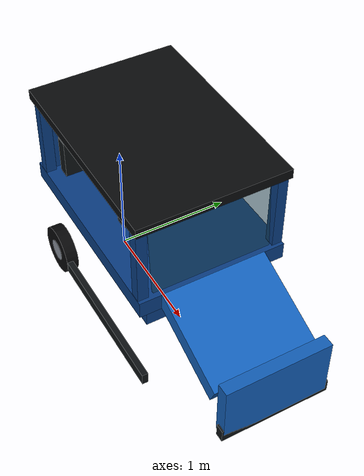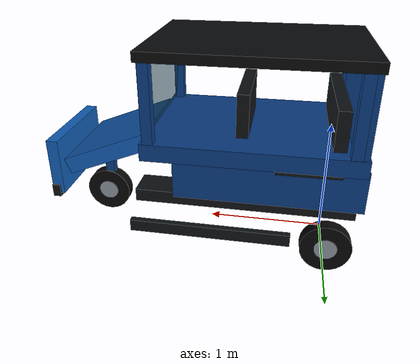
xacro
<?xml version="1.0"?>
<robot xmlns:xacro="http://ros.org/wiki/xacro" name="etrike">
  <xacro:property name="wheel_base" value="2.000"/>
  <xacro:property name="rear_track" value="1.150"/>
  <xacro:property name="half_rear_track" value="0.575"/>
  <xacro:property name="wheel_radius" value="0.203"/>
  <xacro:property name="wheel_width" value="0.102"/>
  <xacro:property name="max_steer_angle" value="0.747"/>

  <xacro:property name="overall_length" value="2.635"/>
  <xacro:property name="overall_width" value="1.300"/>
  <xacro:property name="overall_height" value="1.700"/>
  <xacro:property name="ground_clearance" value="0.170"/>

  <!-- Estimated split; replace after measuring the physical vehicle. -->
  <xacro:property name="front_overhang" value="0.350"/>
  <xacro:property name="rear_overhang" value="0.285"/>

  <xacro:property name="rear_body_length" value="1.550"/>
  <xacro:property name="rear_body_center_x" value="${-rear_overhang + rear_body_length / 2.0}"/>

  <material name="body_blue"><color rgba="0.035 0.235 0.510 1.0"/></material>
  <material name="body_blue_light"><color rgba="0.070 0.370 0.720 1.0"/></material>
  <material name="tire_black"><color rgba="0.025 0.025 0.030 1.0"/></material>
  <material name="hub_metal"><color rgba="0.55 0.58 0.62 1.0"/></material>
  <material name="trim_dark"><color rgba="0.055 0.070 0.080 1.0"/></material>
  <material name="canopy_black"><color rgba="0.035 0.040 0.045 1.0"/></material>
  <material name="window_glass"><color rgba="0.10 0.27 0.34 0.55"/></material>
  <material name="headlamp"><color rgba="1.0 0.82 0.25 1.0"/></material>
  <material name="tail_lamp"><color rgba="0.80 0.025 0.015 1.0"/></material>

  <link name="base_footprint"/>

  <link name="base_link">
    <!-- Narrow central spine keeps all three motorcycle-style wheels exposed. -->
    <visual name="chassis">
      <origin xyz="0.708 0 0.230" rpy="0 0 0"/>
      <geometry><box size="1.985 0.280 0.120"/></geometry>
      <material name="trim_dark"/>
    </visual>

    <!-- Passenger body and front cowling. -->
    <visual name="rear_body">
      <origin xyz="${rear_body_center_x} 0 0.620" rpy="0 0 0"/>
      <geometry><box size="${rear_body_length} 0.880 0.360"/></geometry>
      <material name="body_blue"/>
    </visual>
    <visual name="sloped_front_scudo">
      <origin xyz="1.820 0 0.780" rpy="0 0.380 0"/>
      <geometry><box size="0.780 0.850 0.140"/></geometry>
      <material name="body_blue_light"/>
    </visual>
    <visual name="front_apron">
      <origin xyz="2.300 0 0.610" rpy="0 0 0"/>
      <geometry><box size="0.100 0.850 0.500"/></geometry>
      <material name="body_blue_light"/>
    </visual>
    <visual name="cabin_belt">
      <origin xyz="0.620 0 0.910" rpy="0 0 0"/>
      <geometry><box size="1.720 1.200 0.140"/></geometry>
      <material name="body_blue"/>
    </visual>
    <visual name="left_side_step">
      <origin xyz="0.930 0.625 0.260" rpy="0 0 0"/>
      <geometry><box size="1.300 0.050 0.100"/></geometry>
      <material name="trim_dark"/>
    </visual>
    <visual name="right_side_step">
      <origin xyz="0.930 -0.625 0.260" rpy="0 0 0"/>
      <geometry><box size="1.300 0.050 0.100"/></geometry>
      <material name="trim_dark"/>
    </visual>

    <!-- Cabin roof, rear wall, and structural pillars. -->
    <visual name="roof">
      <origin xyz="0.620 0 1.660" rpy="0 0 0"/>
      <geometry><box size="1.720 1.220 0.080"/></geometry>
      <material name="canopy_black"/>
    </visual>
    <visual name="rear_cabin_wall">
      <origin xyz="-0.180 0 1.285" rpy="0 0 0"/>
      <geometry><box size="0.100 1.160 0.670"/></geometry>
      <material name="body_blue"/>
    </visual>
    <visual name="front_left_pillar">
      <origin xyz="1.410 0.555 1.285" rpy="0 0 0"/>
      <geometry><box size="0.085 0.085 0.670"/></geometry>
      <material name="body_blue"/>
    </visual>
    <visual name="front_right_pillar">
      <origin xyz="1.410 -0.555 1.285" rpy="0 0 0"/>
      <geometry><box size="0.085 0.085 0.670"/></geometry>
      <material name="body_blue"/>
    </visual>
    <visual name="rear_left_pillar">
      <origin xyz="-0.140 0.555 1.285" rpy="0 0 0"/>
      <geometry><box size="0.085 0.085 0.670"/></geometry>
      <material name="body_blue"/>
    </visual>
    <visual name="rear_right_pillar">
      <origin xyz="-0.140 -0.555 1.285" rpy="0 0 0"/>
      <geometry><box size="0.085 0.085 0.670"/></geometry>
      <material name="body_blue"/>
    </visual>

    <!-- Glazing and interior provide readable orientation in the preview. -->
    <visual name="windshield">
      <origin xyz="1.425 0 1.295" rpy="0 -0.08 0"/>
      <geometry><box size="0.024 0.960 0.570"/></geometry>
      <material name="window_glass"/>
    </visual>
    <!-- Side apertures intentionally remain open, as on a passenger tuk-tuk. -->
    <visual name="driver_seat">
      <origin xyz="0.920 0 0.880" rpy="0 0 0"/>
      <geometry><box size="0.390 0.700 0.150"/></geometry>
      <material name="trim_dark"/>
    </visual>
    <visual name="seat_back">
      <origin xyz="0.710 0 1.090" rpy="0 0 0"/>
      <geometry><box size="0.100 0.700 0.500"/></geometry>
      <material name="trim_dark"/>
    </visual>
    <visual name="passenger_bench">
      <origin xyz="0.180 0 0.815" rpy="0 0 0"/>
      <geometry><box size="0.520 0.960 0.130"/></geometry>
      <material name="trim_dark"/>
    </visual>
    <visual name="passenger_backrest">
      <origin xyz="-0.030 0 1.055" rpy="0 0 0"/>
      <geometry><box size="0.100 0.960 0.500"/></geometry>
      <material name="trim_dark"/>
    </visual>

    <!-- Bumpers and lamps make the vehicle's front/rear unambiguous. -->
    <visual name="front_bumper">
      <origin xyz="2.315 0 0.390" rpy="0 0 0"/>
      <geometry><box size="0.070 0.880 0.110"/></geometry>
      <material name="trim_dark"/>
    </visual>
    <visual name="front_left_headlamp">
      <origin xyz="2.332 0.255 0.620" rpy="0 1.57079632679 0"/>
      <geometry><cylinder radius="0.090" length="0.035"/></geometry>
      <material name="headlamp"/>
    </visual>
    <visual name="front_right_headlamp">
      <origin xyz="2.332 -0.255 0.620" rpy="0 1.57079632679 0"/>
      <geometry><cylinder radius="0.090" length="0.035"/></geometry>
      <material name="headlamp"/>
    </visual>
    <visual name="rear_left_tail_lamp">
      <origin xyz="-0.267 0.350 0.650" rpy="0 1.57079632679 0"/>
      <geometry><cylinder radius="0.070" length="0.035"/></geometry>
      <material name="tail_lamp"/>
    </visual>
    <visual name="rear_right_tail_lamp">
      <origin xyz="-0.267 -0.350 0.650" rpy="0 1.57079632679 0"/>
      <geometry><cylinder radius="0.070" length="0.035"/></geometry>
      <material name="tail_lamp"/>
    </visual>

    <!-- Conservative collision envelope; refine after a body scan. -->
    <collision name="chassis_collision">
      <origin xyz="0.708 0 0.230" rpy="0 0 0"/>
      <geometry><box size="1.985 0.280 0.120"/></geometry>
    </collision>
    <collision name="rear_body_collision">
      <origin xyz="${rear_body_center_x} 0 0.620" rpy="0 0 0"/>
      <geometry><box size="${rear_body_length} 0.880 0.360"/></geometry>
    </collision>
    <collision name="front_scudo_collision">
      <origin xyz="1.820 0 0.780" rpy="0 0.380 0"/>
      <geometry><box size="0.780 0.840 0.140"/></geometry>
    </collision>
    <collision name="front_apron_collision">
      <origin xyz="2.300 0 0.610" rpy="0 0 0"/>
      <geometry><box size="0.100 0.840 0.500"/></geometry>
    </collision>
    <collision name="cabin_collision">
      <origin xyz="0.620 0 1.285" rpy="0 0 0"/>
      <geometry><box size="1.720 1.220 0.750"/></geometry>
    </collision>
  </link>

  <joint name="base_footprint_joint" type="fixed">
    <parent link="base_footprint"/>
    <child link="base_link"/>
    <origin xyz="0 0 0" rpy="0 0 0"/>
  </joint>

  <link name="rear_left_wheel_link">
    <visual name="rear_left_tire">
      <origin xyz="0 0 0" rpy="1.57079632679 0 0"/>
      <geometry><cylinder radius="${wheel_radius}" length="${wheel_width}"/></geometry>
      <material name="tire_black"/>
    </visual>
    <visual name="rear_left_hub">
      <origin xyz="0 0 0" rpy="1.57079632679 0 0"/>
      <geometry><cylinder radius="0.090" length="0.108"/></geometry>
      <material name="hub_metal"/>
    </visual>
    <collision>
      <origin xyz="0 0 0" rpy="1.57079632679 0 0"/>
      <geometry><cylinder radius="${wheel_radius}" length="${wheel_width}"/></geometry>
    </collision>
  </link>
  <joint name="rear_left_wheel_joint" type="continuous">
    <parent link="base_link"/>
    <child link="rear_left_wheel_link"/>
    <origin xyz="0 ${half_rear_track} ${wheel_radius}" rpy="0 0 0"/>
    <axis xyz="0 1 0"/>
    <limit effort="120.0" velocity="45.0"/>
  </joint>

  <link name="rear_right_wheel_link">
    <visual name="rear_right_tire">
      <origin xyz="0 0 0" rpy="1.57079632679 0 0"/>
      <geometry><cylinder radius="${wheel_radius}" length="${wheel_width}"/></geometry>
      <material name="tire_black"/>
    </visual>
    <visual name="rear_right_hub">
      <origin xyz="0 0 0" rpy="1.57079632679 0 0"/>
      <geometry><cylinder radius="0.090" length="0.108"/></geometry>
      <material name="hub_metal"/>
    </visual>
    <collision>
      <origin xyz="0 0 0" rpy="1.57079632679 0 0"/>
      <geometry><cylinder radius="${wheel_radius}" length="${wheel_width}"/></geometry>
    </collision>
  </link>
  <joint name="rear_right_wheel_joint" type="continuous">
    <parent link="base_link"/>
    <child link="rear_right_wheel_link"/>
    <origin xyz="0 -${half_rear_track} ${wheel_radius}" rpy="0 0 0"/>
    <axis xyz="0 1 0"/>
    <limit effort="120.0" velocity="45.0"/>
  </joint>

  <!-- Steering knuckle is at the documented front-wheel center. -->
  <link name="front_steering_link">
    <visual name="front_fork">
      <origin xyz="-0.030 0 0.235" rpy="0 0 0"/>
      <geometry><box size="0.080 0.080 0.470"/></geometry>
      <material name="body_blue"/>
    </visual>
  </link>
  <joint name="front_steering_joint" type="revolute">
    <parent link="base_link"/>
    <child link="front_steering_link"/>
    <origin xyz="${wheel_base} 0 ${wheel_radius}" rpy="0 0 0"/>
    <axis xyz="0 0 1"/>
    <limit lower="-${max_steer_angle}" upper="${max_steer_angle}" effort="200.0" velocity="1.5"/>
  </joint>

  <link name="front_wheel_link">
    <visual name="front_tire">
      <origin xyz="0 0 0" rpy="1.57079632679 0 0"/>
      <geometry><cylinder radius="${wheel_radius}" length="${wheel_width}"/></geometry>
      <material name="tire_black"/>
    </visual>
    <visual name="front_hub">
      <origin xyz="0 0 0" rpy="1.57079632679 0 0"/>
      <geometry><cylinder radius="0.090" length="0.108"/></geometry>
      <material name="hub_metal"/>
    </visual>
    <collision>
      <origin xyz="0 0 0" rpy="1.57079632679 0 0"/>
      <geometry><cylinder radius="${wheel_radius}" length="${wheel_width}"/></geometry>
    </collision>
  </link>
  <joint name="front_wheel_joint" type="continuous">
    <parent link="front_steering_link"/>
    <child link="front_wheel_link"/>
    <origin xyz="0 0 0" rpy="0 0 0"/>
    <axis xyz="0 1 0"/>
    <limit effort="120.0" velocity="45.0"/>
  </joint>
</robot>
